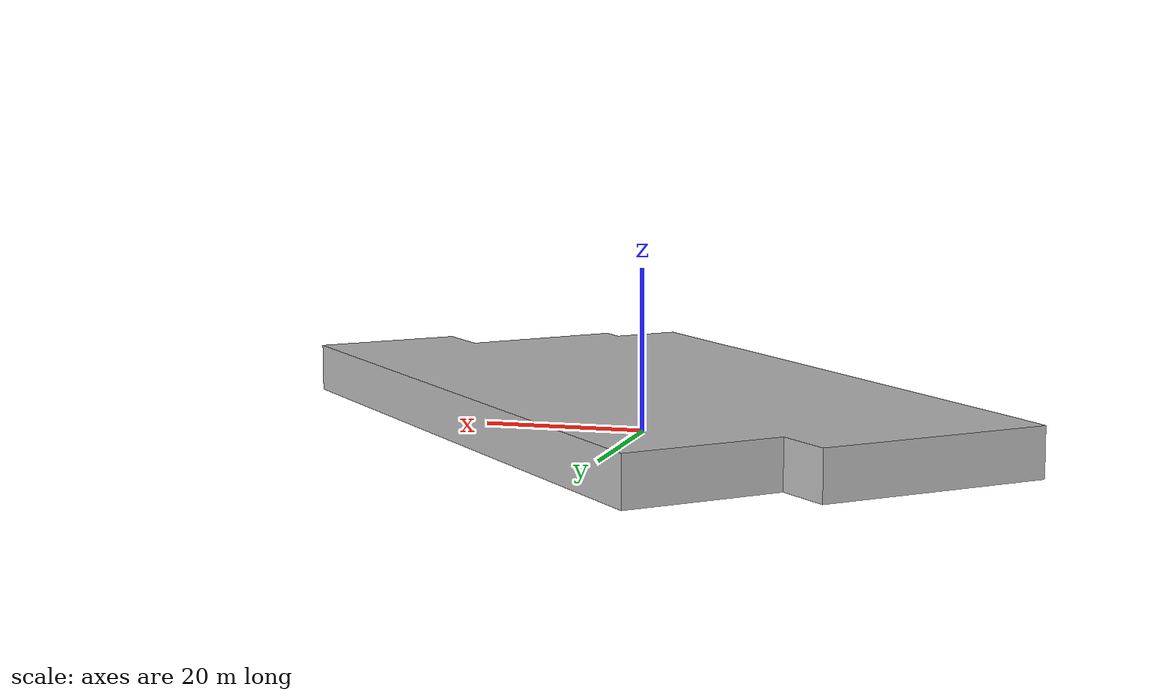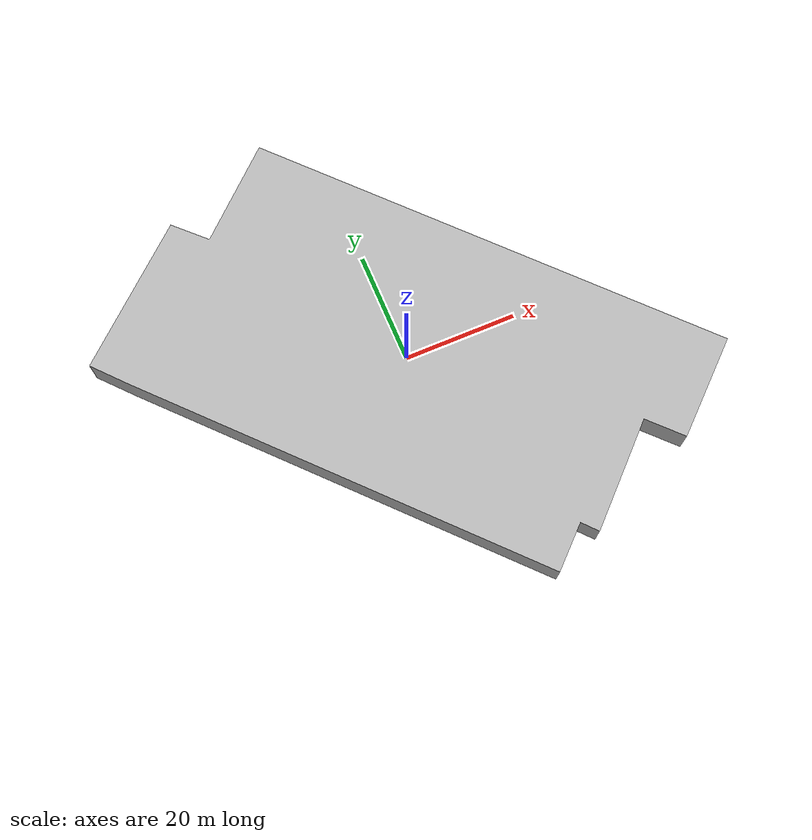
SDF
<?xml version="1.0" ?>
<sdf version="1.7">
  <model name="building_0103_assumed_a_grande_construcao">
    <static>true</static>
    <link name="building_link">
      <visual name="building_visual">
        <geometry>
          <mesh>
            <uri>model://building_0103_assumed_a_grande_construcao/meshes/construction_0103_assumed_A_Grande_construcao_h6m.obj</uri>
          </mesh>
        </geometry>
      </visual>
    <collision name="building_collision">
      <geometry>
        <mesh>
          <uri>model://building_0103_assumed_a_grande_construcao/meshes/construction_0103_assumed_A_Grande_construcao_h6m.obj</uri>
        </mesh>
      </geometry>
    </collision>
    </link>
  </model>
</sdf>
